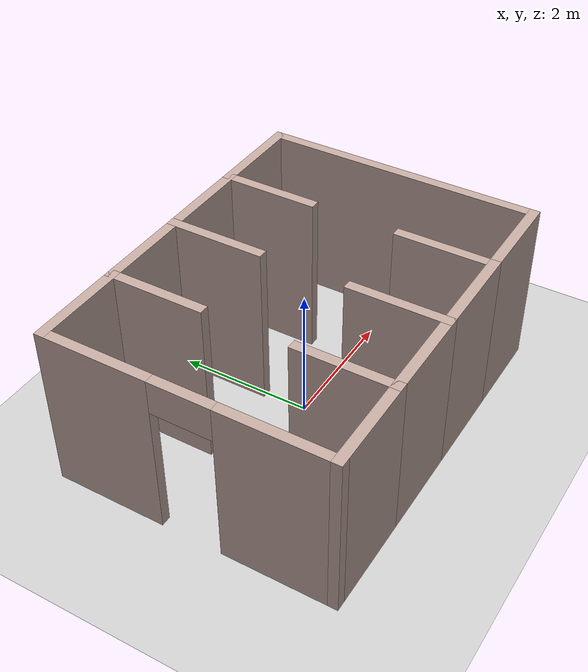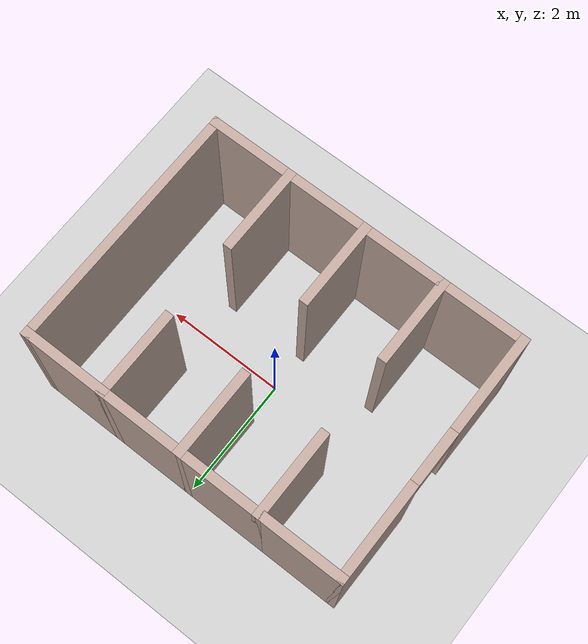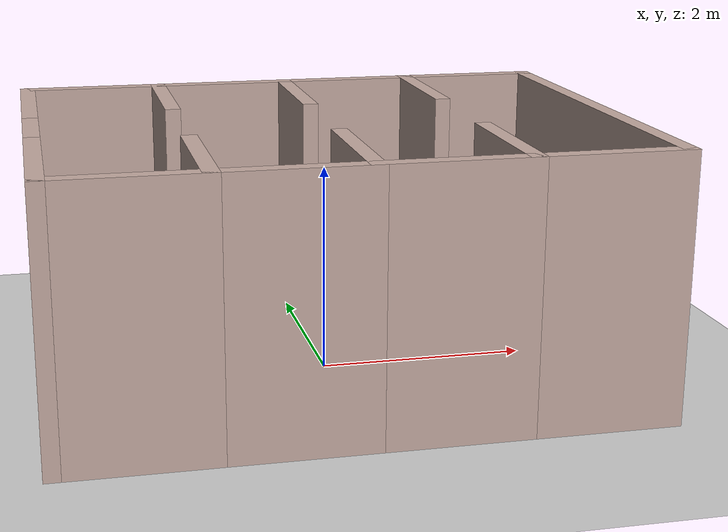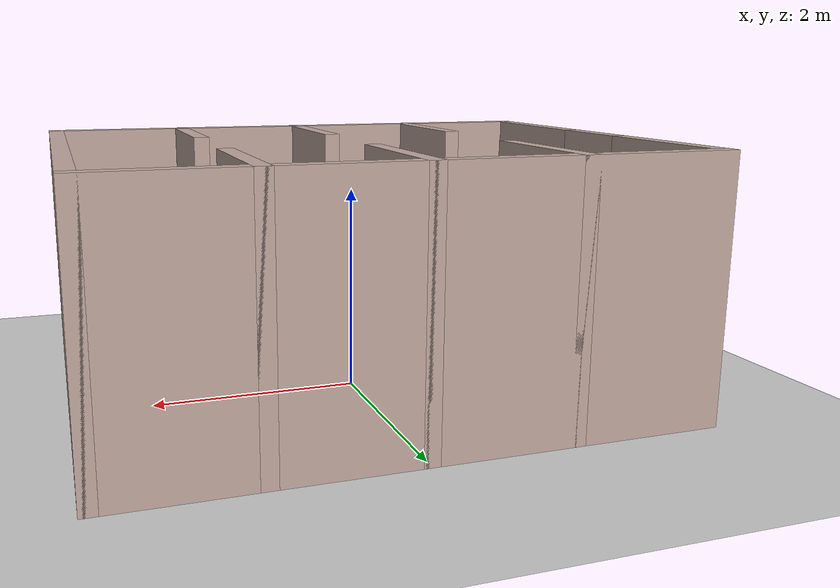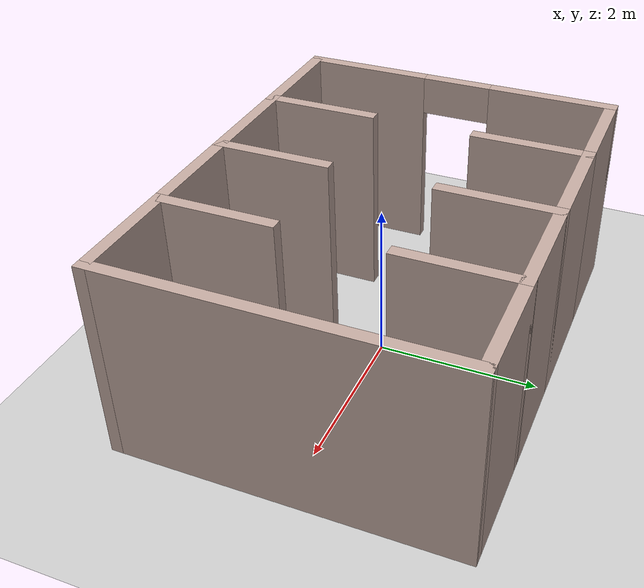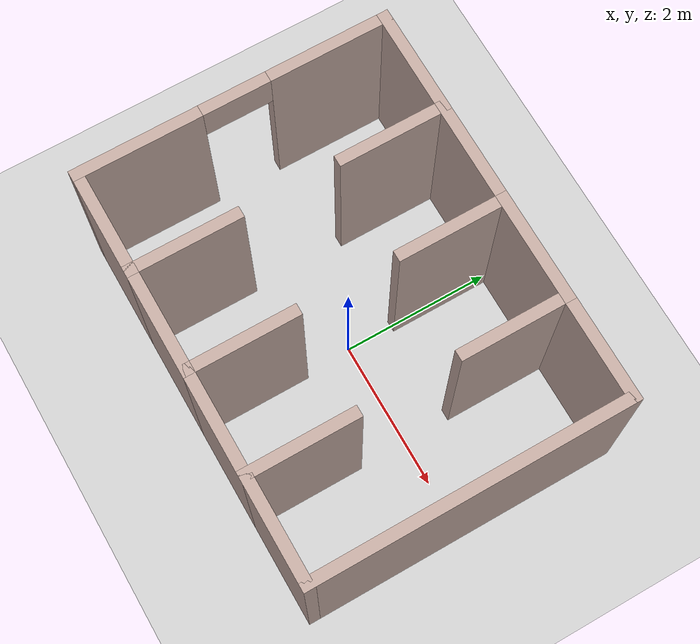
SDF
<sdf version="1.6">
 <world name="default">
  <light name="sun" type="directional">
   <pose>0 0 10 0 -0 0</pose>
   <diffuse>0.8 0.8 0.8 1</diffuse>
   <specular>0.2 0.2 0.2 1</specular>
   <attenuation>
    <range>1000</range>
    <constant>0.9</constant>
    <linear>0.01</linear>
    <quadratic>0.001</quadratic>
   </attenuation>
   <direction>-0.5 0.1 -0.9</direction>
  </light>
  <model name="ground_plane">
   <static>1</static>
   <link name="link">
    <collision name="collision">
     <geometry><plane><normal>0 0 1</normal><size>100 100</size></plane></geometry>
     <surface>
      <contact><collide_bitmask>65535</collide_bitmask></contact>
      <friction><ode><mu>100</mu><mu2>50</mu2></ode></friction>
     </surface>
    </collision>
    <visual name="visual">
     <cast_shadows>0</cast_shadows>
     <geometry><plane><normal>0 0 1</normal><size>100 100</size></plane></geometry>
     <material>
      <script><uri>file://media/materials/scripts/gazebo.material</uri><name>Gazebo/Grey</name></script>
     </material>
    </visual>
   </link>
  </model>
  <gravity>0 0 -9.8</gravity>
  <magnetic_field>6e-06 2.3e-05 -4.2e-05</magnetic_field>
  <atmosphere type="adiabatic"/>
  <physics name="default_physics" default="0" type="ode">
   <max_step_size>0.001</max_step_size>
   <real_time_factor>1</real_time_factor>
   <real_time_update_rate>1000</real_time_update_rate>
  </physics>
  <scene><ambient>0.4 0.4 0.4 1</ambient><background>0.7 0.7 0.7 1</background><shadows>1</shadows></scene>
  <spherical_coordinates>
   <surface_model>EARTH_WGS84</surface_model>
   <latitude_deg>0</latitude_deg>
   <longitude_deg>0</longitude_deg>
   <elevation>0</elevation>
   <heading_deg>0</heading_deg>
  </spherical_coordinates>
  <model name="parking">
   <link name="Wall_10">
    <collision name="Wall_10_Collision">
     <geometry><box><size>1.5 0.15 2.5</size></box></geometry>
     <pose>0 0 1.25 0 -0 0</pose>
    </collision>
    <visual name="Wall_10_Visual">
     <pose>0 0 1.25 0 -0 0</pose>
     <geometry><box><size>1.5 0.15 2.5</size></box></geometry>
     <material>
      <script><uri>file://media/materials/scripts/gazebo.material</uri><name>Gazebo/Grey</name></script>
      <ambient>0.760784 0.662745 0.627451 1</ambient>
     </material>
     <meta><layer>0</layer></meta>
    </visual>
    <pose>-1.35 1.375 0 0 -0 -1.5708</pose>
   </link>
   <link name="Wall_12">
    <collision name="Wall_12_Collision">
     <geometry><box><size>1.5 0.15 2.5</size></box></geometry>
     <pose>0 0 1.25 0 -0 0</pose>
    </collision>
    <visual name="Wall_12_Visual">
     <pose>0 0 1.25 0 -0 0</pose>
     <geometry><box><size>1.5 0.15 2.5</size></box></geometry>
     <material>
      <script><uri>file://media/materials/scripts/gazebo.material</uri><name>Gazebo/Grey</name></script>
      <ambient>0.760784 0.662745 0.627451 1</ambient>
     </material>
     <meta><layer>0</layer></meta>
    </visual>
    <pose>-0.675 2.05 0 0 -0 0</pose>
   </link>
   <link name="Wall_13">
    <collision name="Wall_13_Collision">
     <geometry><box><size>1.5 0.15 2.5</size></box></geometry>
     <pose>0 0 1.25 0 -0 0</pose>
    </collision>
    <visual name="Wall_13_Visual">
     <pose>0 0 1.25 0 -0 0</pose>
     <geometry><box><size>1.5 0.15 2.5</size></box></geometry>
     <material>
      <script><uri>file://media/materials/scripts/gazebo.material</uri><name>Gazebo/Grey</name></script>
      <ambient>0.760784 0.662745 0.627451 1</ambient>
     </material>
     <meta><layer>0</layer></meta>
    </visual>
    <pose>0 1.375 0 0 -0 -1.5708</pose>
   </link>
   <link name="Wall_15">
    <collision name="Wall_15_Collision">
     <geometry><box><size>1.5 0.15 2.5</size></box></geometry>
     <pose>0 0 1.25 0 -0 0</pose>
    </collision>
    <visual name="Wall_15_Visual">
     <pose>0 0 1.25 0 -0 0</pose>
     <geometry><box><size>1.5 0.15 2.5</size></box></geometry>
     <material>
      <script><uri>file://media/materials/scripts/gazebo.material</uri><name>Gazebo/Grey</name></script>
      <ambient>0.760784 0.662745 0.627451 1</ambient>
     </material>
     <meta><layer>0</layer></meta>
    </visual>
    <pose>0.675 2.05 0 0 -0 0</pose>
   </link>
   <link name="Wall_16">
    <collision name="Wall_16_Collision">
     <geometry><box><size>1.5 0.15 2.5</size></box></geometry>
     <pose>0 0 1.25 0 -0 0</pose>
    </collision>
    <visual name="Wall_16_Visual">
     <pose>0 0 1.25 0 -0 0</pose>
     <geometry><box><size>1.5 0.15 2.5</size></box></geometry>
     <material>
      <script><uri>file://media/materials/scripts/gazebo.material</uri><name>Gazebo/Grey</name></script>
      <ambient>0.760784 0.662745 0.627451 1</ambient>
     </material>
     <meta><layer>0</layer></meta>
    </visual>
    <pose>1.35 1.375 0 0 -0 -1.5708</pose>
   </link>
   <link name="Wall_18">
    <collision name="Wall_18_Collision">
     <geometry><box><size>1.5 0.15 2.5</size></box></geometry>
     <pose>0 0 1.25 0 -0 0</pose>
    </collision>
    <visual name="Wall_18_Visual">
     <pose>0 0 1.25 0 -0 0</pose>
     <geometry><box><size>1.5 0.15 2.5</size></box></geometry>
     <material>
      <script><uri>file://media/materials/scripts/gazebo.material</uri><name>Gazebo/Grey</name></script>
      <ambient>0.760784 0.662745 0.627451 1</ambient>
     </material>
     <meta><layer>0</layer></meta>
    </visual>
    <pose>2.025 2.05 0 0 -0 0</pose>
   </link>
   <link name="Wall_19">
    <collision name="Wall_19_Collision">
     <geometry><box><size>4.25 0.15 2.5</size></box></geometry>
     <pose>0 0 1.25 0 -0 0</pose>
    </collision>
    <visual name="Wall_19_Visual">
     <pose>0 0 1.25 0 -0 0</pose>
     <geometry><box><size>4.25 0.15 2.5</size></box></geometry>
     <material>
      <script><uri>file://media/materials/scripts/gazebo.material</uri><name>Gazebo/Grey</name></script>
      <ambient>0.760784 0.662745 0.627451 1</ambient>
     </material>
     <meta><layer>0</layer></meta>
    </visual>
    <pose>2.7 0 0 0 -0 -1.5708</pose>
   </link>
   <link name="Wall_2">
    <pose>-2.7 0 0 0 -0 1.5708</pose>
    <visual name="Wall_2_Visual_0">
     <pose>-1.2825 0 1.25 0 -0 0</pose>
     <geometry><box><size>1.685 0.15 2.5</size></box></geometry>
     <material>
      <script><uri>file://media/materials/scripts/gazebo.material</uri><name>Gazebo/Grey</name></script>
      <ambient>0.760784 0.662745 0.627451 1</ambient>
     </material>
     <meta><layer>0</layer></meta>
    </visual>
    <collision name="Wall_2_Collision_0">
     <geometry><box><size>1.685 0.15 2.5</size></box></geometry>
     <pose>-1.2825 0 1.25 0 -0 0</pose>
    </collision>
    <visual name="Wall_2_Visual_1">
     <pose>1.2925 0 1.25 0 -0 0</pose>
     <geometry><box><size>1.665 0.15 2.5</size></box></geometry>
     <material>
      <script><uri>file://media/materials/scripts/gazebo.material</uri><name>Gazebo/Grey</name></script>
      <ambient>0.760784 0.662745 0.627451 1</ambient>
     </material>
     <meta><layer>0</layer></meta>
    </visual>
    <collision name="Wall_2_Collision_1">
     <geometry><box><size>1.665 0.15 2.5</size></box></geometry>
     <pose>1.2925 0 1.25 0 -0 0</pose>
    </collision>
    <visual name="Wall_2_Visual_2">
     <pose>0.01 0 2.25 0 -0 0</pose>
     <geometry><box><size>0.9 0.15 0.5</size></box></geometry>
     <material>
      <script><uri>file://media/materials/scripts/gazebo.material</uri><name>Gazebo/Grey</name></script>
      <ambient>0.760784 0.662745 0.627451 1</ambient>
     </material>
     <meta><layer>0</layer></meta>
    </visual>
    <collision name="Wall_2_Collision_2">
     <geometry><box><size>0.9 0.15 0.5</size></box></geometry>
     <pose>0.01 0 2.25 0 -0 0</pose>
    </collision>
   </link>
   <link name="Wall_21">
    <collision name="Wall_21_Collision">
     <geometry><box><size>1.5 0.15 2.5</size></box></geometry>
     <pose>0 0 1.25 0 -0 0</pose>
    </collision>
    <visual name="Wall_21_Visual">
     <pose>0 0 1.25 0 -0 0</pose>
     <geometry><box><size>1.5 0.15 2.5</size></box></geometry>
     <material>
      <script><uri>file://media/materials/scripts/gazebo.material</uri><name>Gazebo/Grey</name></script>
      <ambient>0.760784 0.662745 0.627451 1</ambient>
     </material>
     <meta><layer>0</layer></meta>
    </visual>
    <pose>2.025 -2.05 0 0 -0 3.14159</pose>
   </link>
   <link name="Wall_22">
    <collision name="Wall_22_Collision">
     <geometry><box><size>1.5 0.15 2.5</size></box></geometry>
     <pose>0 0 1.25 0 -0 0</pose>
    </collision>
    <visual name="Wall_22_Visual">
     <pose>0 0 1.25 0 -0 0</pose>
     <geometry><box><size>1.5 0.15 2.5</size></box></geometry>
     <material>
      <script><uri>file://media/materials/scripts/gazebo.material</uri><name>Gazebo/Grey</name></script>
      <ambient>0.760784 0.662745 0.627451 1</ambient>
     </material>
     <meta><layer>0</layer></meta>
    </visual>
    <pose>1.35 -1.375 0 0 -0 1.5708</pose>
   </link>
   <link name="Wall_24">
    <collision name="Wall_24_Collision">
     <geometry><box><size>1.5 0.15 2.5</size></box></geometry>
     <pose>0 0 1.25 0 -0 0</pose>
    </collision>
    <visual name="Wall_24_Visual">
     <pose>0 0 1.25 0 -0 0</pose>
     <geometry><box><size>1.5 0.15 2.5</size></box></geometry>
     <material>
      <script><uri>file://media/materials/scripts/gazebo.material</uri><name>Gazebo/Grey</name></script>
      <ambient>0.760784 0.662745 0.627451 1</ambient>
     </material>
     <meta><layer>0</layer></meta>
    </visual>
    <pose>0.675 -2.05 0 0 -0 3.14159</pose>
   </link>
   <link name="Wall_25">
    <collision name="Wall_25_Collision">
     <geometry><box><size>1.5 0.15 2.5</size></box></geometry>
     <pose>0 0 1.25 0 -0 0</pose>
    </collision>
    <visual name="Wall_25_Visual">
     <pose>0 0 1.25 0 -0 0</pose>
     <geometry><box><size>1.5 0.15 2.5</size></box></geometry>
     <material>
      <script><uri>file://media/materials/scripts/gazebo.material</uri><name>Gazebo/Grey</name></script>
      <ambient>0.760784 0.662745 0.627451 1</ambient>
     </material>
     <meta><layer>0</layer></meta>
    </visual>
    <pose>0 -1.375 0 0 -0 1.5708</pose>
   </link>
   <link name="Wall_27">
    <collision name="Wall_27_Collision">
     <geometry><box><size>1.5 0.15 2.5</size></box></geometry>
     <pose>0 0 1.25 0 -0 0</pose>
    </collision>
    <visual name="Wall_27_Visual">
     <pose>0 0 1.25 0 -0 0</pose>
     <geometry><box><size>1.5 0.15 2.5</size></box></geometry>
     <material>
      <script><uri>file://media/materials/scripts/gazebo.material</uri><name>Gazebo/Grey</name></script>
      <ambient>0.760784 0.662745 0.627451 1</ambient>
     </material>
     <meta><layer>0</layer></meta>
    </visual>
    <pose>-0.675 -2.05 0 0 -0 3.14159</pose>
   </link>
   <link name="Wall_28">
    <collision name="Wall_28_Collision">
     <geometry><box><size>1.5 0.15 2.5</size></box></geometry>
     <pose>0 0 1.25 0 -0 0</pose>
    </collision>
    <visual name="Wall_28_Visual">
     <pose>0 0 1.25 0 -0 0</pose>
     <geometry><box><size>1.5 0.15 2.5</size></box></geometry>
     <material>
      <script><uri>file://media/materials/scripts/gazebo.material</uri><name>Gazebo/Grey</name></script>
      <ambient>0.760784 0.662745 0.627451 1</ambient>
     </material>
     <meta><layer>0</layer></meta>
    </visual>
    <pose>-1.35 -1.375 0 0 -0 1.5708</pose>
   </link>
   <link name="Wall_30">
    <collision name="Wall_30_Collision">
     <geometry><box><size>1.5 0.15 2.5</size></box></geometry>
     <pose>0 0 1.25 0 -0 0</pose>
    </collision>
    <visual name="Wall_30_Visual">
     <pose>0 0 1.25 0 -0 0</pose>
     <geometry><box><size>1.5 0.15 2.5</size></box></geometry>
     <material>
      <script><uri>file://media/materials/scripts/gazebo.material</uri><name>Gazebo/Grey</name></script>
      <ambient>0.760784 0.662745 0.627451 1</ambient>
     </material>
     <meta><layer>0</layer></meta>
    </visual>
    <pose>-2.025 -2.05 0 0 -0 3.14159</pose>
   </link>
   <link name="Wall_9">
    <collision name="Wall_9_Collision">
     <geometry><box><size>1.5 0.15 2.5</size></box></geometry>
     <pose>0 0 1.25 0 -0 0</pose>
    </collision>
    <visual name="Wall_9_Visual">
     <pose>0 0 1.25 0 -0 0</pose>
     <geometry><box><size>1.5 0.15 2.5</size></box></geometry>
     <material>
      <script><uri>file://media/materials/scripts/gazebo.material</uri><name>Gazebo/Grey</name></script>
      <ambient>0.760784 0.662745 0.627451 1</ambient>
     </material>
     <meta><layer>0</layer></meta>
    </visual>
    <pose>-2.025 2.05 0 0 -0 0</pose>
   </link>
   <static>1</static>
  </model>
 </world>
</sdf>
